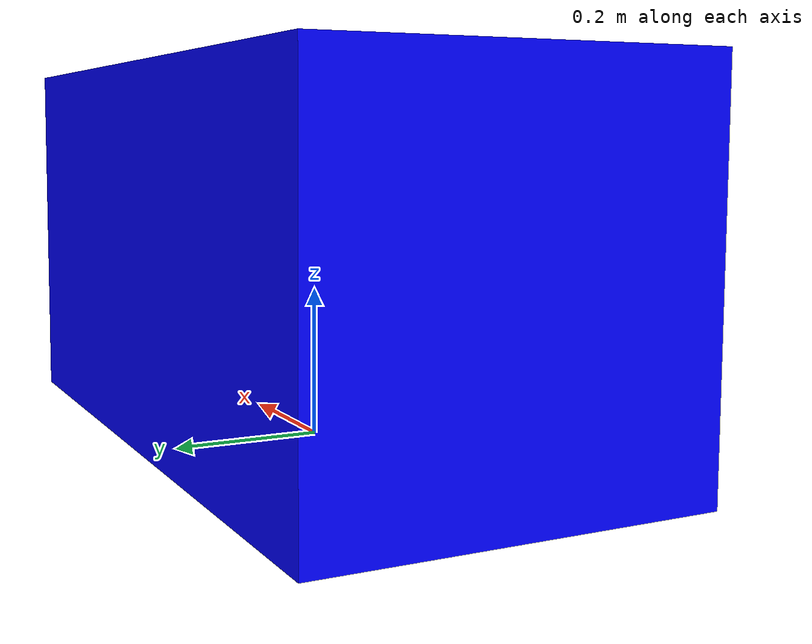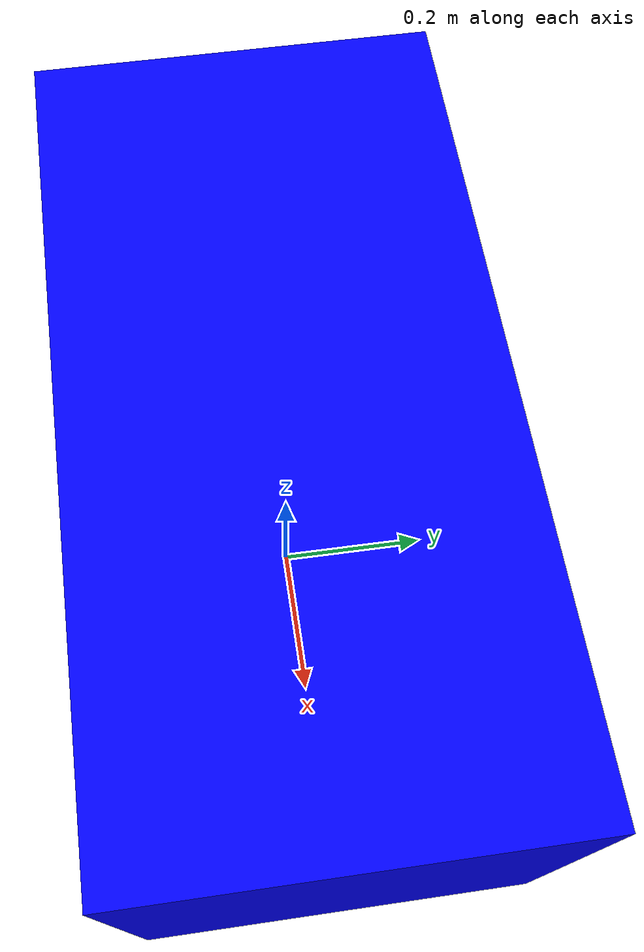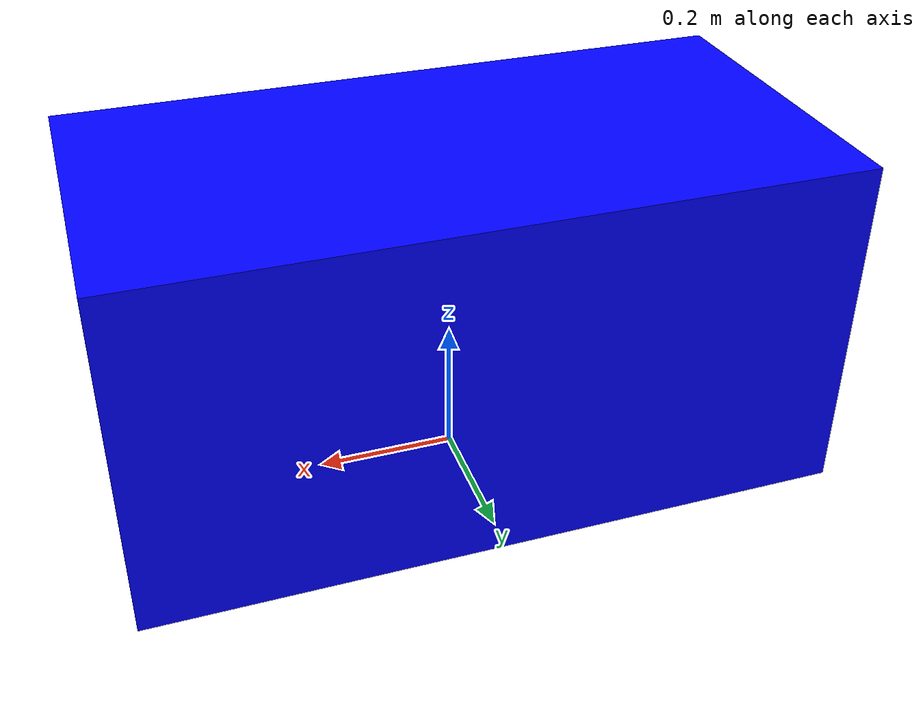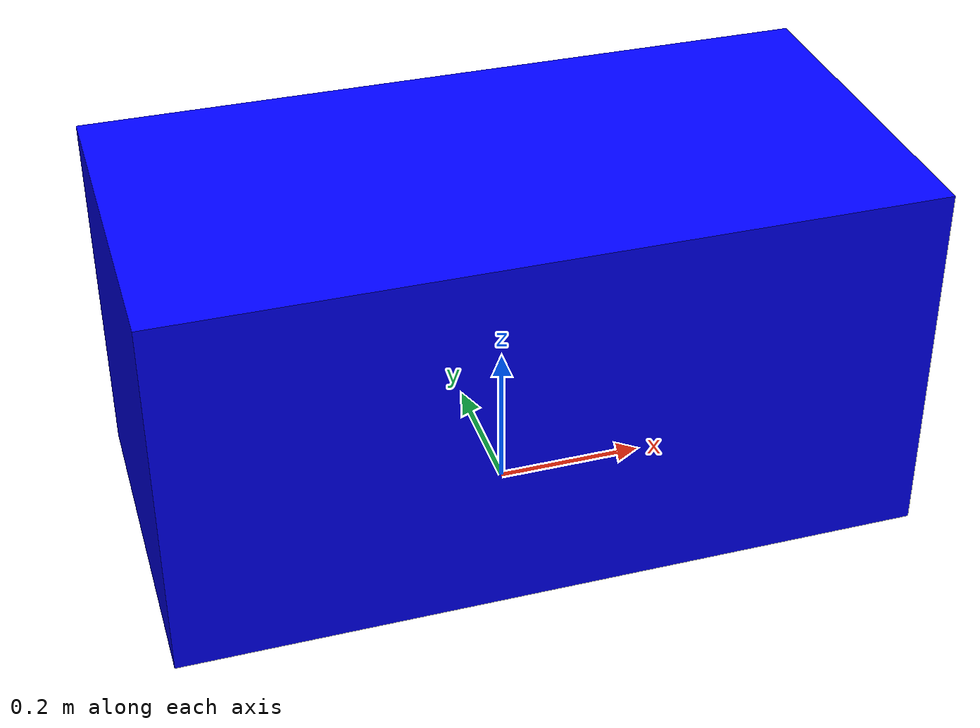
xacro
<robot xmlns="http://robotics.org/urdf/2.0" xmlns:xacro="http://www.ros.org/wiki/xacro" name="simple_box">

    <!-- Inertia Macro -->
    <xacro:include filename="inertial_macros.xacro" />

    <!-- Cart Properties -->
    <xacro:property name="base_length" value = "1"/>
    <xacro:property name="base_width" value = "0.5"/>
    <xacro:property name="base_height" value = "0.5"/>
    <xacro:property name="base_mass" value = "1"/>

    <!-- Links & Joints -->
    <link name="base_link">
    </link>

    <joint name="cart_joint" type="fixed">
        <origin xyz="0.0 0.0 ${base_height/2}" rpy="0.0 0.0 0.0"/>
        <parent link="base_link"/>
        <child link="cart_link"/>
        <axis xyz="1.0 0.0 0.0"/>
        <limit lower="-5.0" upper="5.0" effort="10.0" velocity="1.0"/>
    </joint>

    <link name="cart_link">
        <visual>
            <origin xyz="0.0 0.0 0.0" rpy="0.0 0.0 0.0"/>
            <geometry>
                <box size="${base_length} ${base_width} ${base_height}"/>
            </geometry>
            <material name="Blue">
                <color rgba="0.0 0.0 1.0 1.0"/>
            </material>
        </visual>
        <collision>
            <origin xyz="0.0 0.0 0.0" rpy="0.0 0.0 0.0"/>
            <geometry>
                <box size="${base_length} ${base_width} ${base_height}"/>
            </geometry>
        </collision>
        <xacro:inertial_box mass="${base_mass}" x="${base_length}" y="${base_width}" z="${base_height}">
            <origin xyz="0.0 0 0.0" rpy="0 0 0"/>
        </xacro:inertial_box>
    </link>

    <gazebo reference="base_link"/>
    <gazebo reference="cart_link">
        <mu1>1.0</mu1>
        <mu2>1.0</mu2>
    </gazebo>

    <gazebo>

        <plugin name="p3d_base_controller" filename="libgazebo_ros_p3d.so">
            <alwaysOn>true</alwaysOn>
            <updateRate>50.0</updateRate>
            <bodyName>cart_link</bodyName>
            <frameName>odom</frameName>
            <odomTopic>odom</odomTopic>
            <gaussianNoise>0.01</gaussianNoise>
        </plugin>

      <plugin filename="gz-sim-joint-state-publisher-system" name="gz::sim::systems::JointStatePublisher">
         <topic>joint_states</topic>
         <topic>odom</topic>
      </plugin>
    </gazebo>

</robot>
